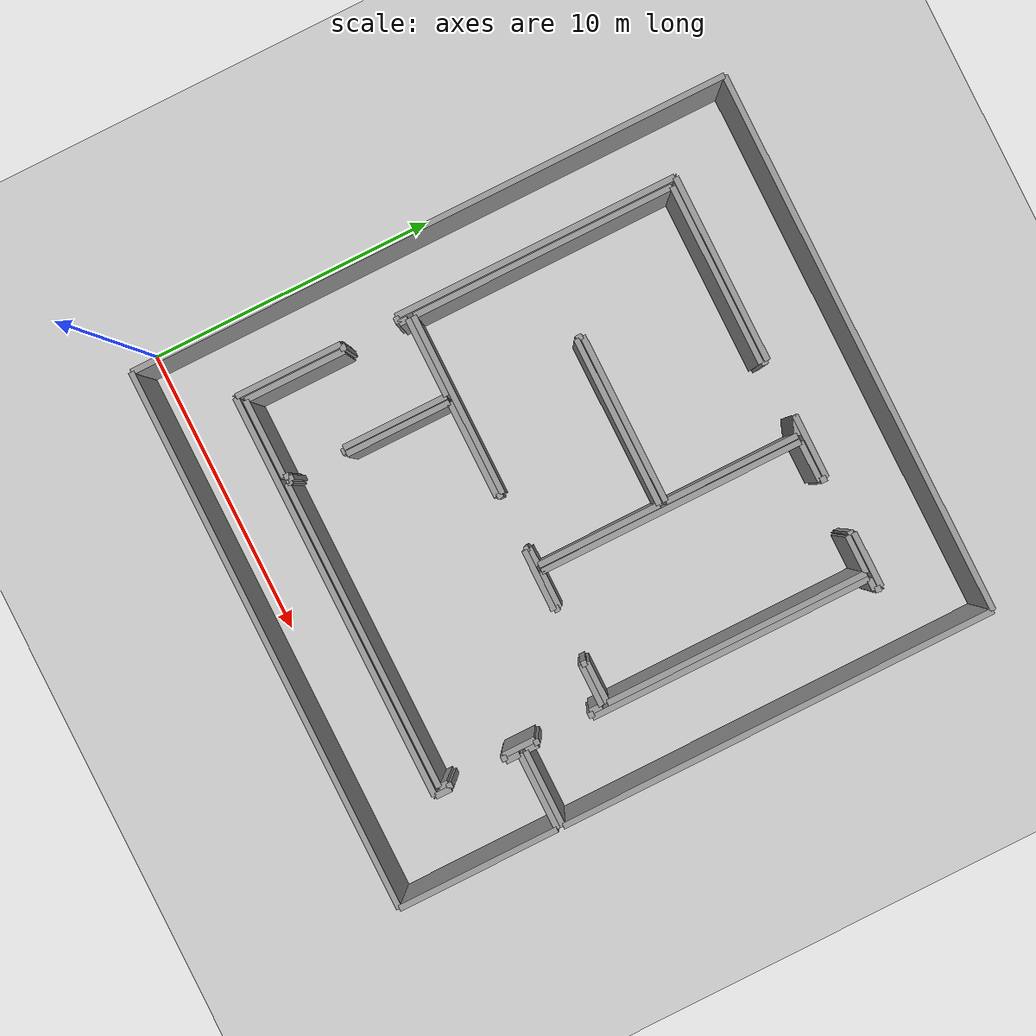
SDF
<sdf version="1.6">
 <world name="1_wall">
  <light name="sun" type="directional">
   <pose>0 0 10 0 -0 0</pose>
   <diffuse>0.8 0.8 0.8 1</diffuse>
   <specular>0.2 0.2 0.2 1</specular>
   <attenuation>
    <range>1000</range>
    <constant>0.9</constant>
    <linear>0.01</linear>
    <quadratic>0.001</quadratic>
   </attenuation>
   <direction>-0.5 0.1 -0.9</direction>
  </light>
  <model name="ground_plane">
   <static>1</static>
   <link name="link">
    <collision name="collision">
     <geometry><plane><normal>0 0 1</normal><size>1000 1000</size></plane></geometry>
     <surface><friction><ode><mu>100</mu><mu2>50</mu2></ode></friction></surface>
    </collision>
    <visual name="visual">
     <cast_shadows>0</cast_shadows>
     <geometry><plane><normal>0 0 1</normal><size>10000 10000</size></plane></geometry>
     <material>
      <script><uri>file://media/materials/scripts/gazebo.material</uri><name>Gazebo/Grey</name></script>
     </material>
    </visual>
    <velocity_decay><linear>0</linear><angular>0</angular></velocity_decay>
   </link>
  </model>
  <physics name="default_physics" default="0" type="ode">
   <max_step_size>0.01</max_step_size>
   <real_time_factor>1</real_time_factor>
   <real_time_update_rate>100</real_time_update_rate>
  </physics>
  <scene><ambient>0.4 0.4 0.4 1</ambient><background>0.7 0.7 0.7 1</background><shadows>1</shadows></scene>
  <model name="Wall_0">
   <pose>0 -1 0 0 -0 0</pose>
   <static>1</static>
   <link name="Wall_0">
    <collision name="Wall_Collision_0">
     <geometry><box><size>18.86 0.2 2.5</size></box></geometry>
     <pose>0 0 1.25 0 -0 0</pose>
    </collision>
    <visual name="Wall_Visual_0">
     <pose>0 0 1.25 0 -0 0</pose>
     <geometry><box><size>18.86 0.2 2.5</size></box></geometry>
     <material>
      <script><uri>file://media/materials/scripts/gazebo.material</uri><name>Gazebo/Grey</name></script>
     </material>
    </visual>
    <velocity_decay><linear>0</linear><angular>0</angular></velocity_decay>
    <pose>9.99 0.56 0 0 -0 -3.14159</pose>
   </link>
  </model>
  <model name="Wall_1">
   <pose>0 -1 0 0 -0 0</pose>
   <static>1</static>
   <link name="Wall_1">
    <collision name="Wall_Collision_1">
     <geometry><box><size>20.9 0.2 2.5</size></box></geometry>
     <pose>0 0 1.25 0 -0 0</pose>
    </collision>
    <visual name="Wall_Visual_1">
     <pose>0 0 1.25 0 -0 0</pose>
     <geometry><box><size>20.9 0.2 2.5</size></box></geometry>
     <material>
      <script><uri>file://media/materials/scripts/gazebo.material</uri><name>Gazebo/Grey</name></script>
     </material>
    </visual>
    <velocity_decay><linear>0</linear><angular>0</angular></velocity_decay>
    <pose>0.56 11.01 0 0 -0 1.5708</pose>
   </link>
  </model>
  <model name="Wall_2">
   <pose>0 -1 0 0 -0 0</pose>
   <static>1</static>
   <link name="Wall_2">
    <collision name="Wall_Collision_2">
     <geometry><box><size>18.86 0.2 2.5</size></box></geometry>
     <pose>0 0 1.25 0 -0 0</pose>
    </collision>
    <visual name="Wall_Visual_2">
     <pose>0 0 1.25 0 -0 0</pose>
     <geometry><box><size>18.86 0.2 2.5</size></box></geometry>
     <material>
      <script><uri>file://media/materials/scripts/gazebo.material</uri><name>Gazebo/Grey</name></script>
     </material>
    </visual>
    <velocity_decay><linear>0</linear><angular>0</angular></velocity_decay>
    <pose>9.99 21.46 0 0 -0 0</pose>
   </link>
  </model>
  <model name="Wall_3">
   <pose>0 -1 0 0 -0 0</pose>
   <static>1</static>
   <link name="Wall_3">
    <collision name="Wall_Collision_3">
     <geometry><box><size>15.14 0.2 2.5</size></box></geometry>
     <pose>0 0 1.25 0 -0 0</pose>
    </collision>
    <visual name="Wall_Visual_3">
     <pose>0 0 1.25 0 -0 0</pose>
     <geometry><box><size>15.14 0.2 2.5</size></box></geometry>
     <material>
      <script><uri>file://media/materials/scripts/gazebo.material</uri><name>Gazebo/Grey</name></script>
     </material>
    </visual>
    <velocity_decay><linear>0</linear><angular>0</angular></velocity_decay>
    <pose>19.42 13.89 0 0 0 -1.5708</pose>
   </link>
  </model>
  <model name="Wall_4">
   <pose>0 -1 0 0 -0 0</pose>
   <static>1</static>
   <link name="Wall_4">
    <collision name="Wall_Collision_4">
     <geometry><box><size>2.64 0.2 2.5</size></box></geometry>
     <pose>0 0 1.25 0 -0 0</pose>
    </collision>
    <visual name="Wall_Visual_4">
     <pose>0 0 1.25 0 -0 0</pose>
     <geometry><box><size>2.64 0.2 2.5</size></box></geometry>
     <material>
      <script><uri>file://media/materials/scripts/gazebo.material</uri><name>Gazebo/Grey</name></script>
     </material>
    </visual>
    <velocity_decay><linear>0</linear><angular>0</angular></velocity_decay>
    <pose>18.1 6.32 0 0 -0 -3.14159</pose>
   </link>
  </model>
  <model name="Wall_5">
   <pose>0 -1 0 0 -0 0</pose>
   <static>1</static>
   <link name="Wall_5">
    <collision name="Wall_Collision_5">
     <geometry><box><size>0.44 0.2 2.5</size></box></geometry>
     <pose>0 0 1.25 0 -0 0</pose>
    </collision>
    <visual name="Wall_Visual_5">
     <pose>0 0 1.25 0 -0 0</pose>
     <geometry><box><size>0.44 0.2 2.5</size></box></geometry>
     <material>
      <script><uri>file://media/materials/scripts/gazebo.material</uri><name>Gazebo/Grey</name></script>
     </material>
    </visual>
    <velocity_decay><linear>0</linear><angular>0</angular></velocity_decay>
    <pose>16.78 6.54 0 0 -0 1.5708</pose>
   </link>
  </model>
  <model name="Wall_6">
   <pose>0 -1 0 0 -0 0</pose>
   <static>1</static>
   <link name="Wall_6">
    <collision name="Wall_Collision_6">
     <geometry><box><size>0.2 0.2 2.5</size></box></geometry>
     <pose>0 0 1.25 0 -0 0</pose>
    </collision>
    <visual name="Wall_Visual_6">
     <pose>0 0 1.25 0 -0 0</pose>
     <geometry><box><size>0.2 0.2 2.5</size></box></geometry>
     <material>
      <script><uri>file://media/materials/scripts/gazebo.material</uri><name>Gazebo/Grey</name></script>
     </material>
    </visual>
    <velocity_decay><linear>0</linear><angular>0</angular></velocity_decay>
    <pose>16.68 6.76 0 0 -0 -3.14159</pose>
   </link>
  </model>
  <model name="Wall_7">
   <pose>0 -1 0 0 -0 0</pose>
   <static>1</static>
   <link name="Wall_7">
    <collision name="Wall_Collision_7">
     <geometry><box><size>1.14 0.2 2.5</size></box></geometry>
     <pose>0 0 1.25 0 -0 0</pose>
    </collision>
    <visual name="Wall_Visual_7">
     <pose>0 0 1.25 0 -0 0</pose>
     <geometry><box><size>1.14 0.2 2.5</size></box></geometry>
     <material>
      <script><uri>file://media/materials/scripts/gazebo.material</uri><name>Gazebo/Grey</name></script>
     </material>
    </visual>
    <velocity_decay><linear>0</linear><angular>0</angular></velocity_decay>
    <pose>16.58 6.19 0 0 0 -1.5708</pose>
   </link>
  </model>
  <model name="Wall_8">
   <pose>0 -1 0 0 -0 0</pose>
   <static>1</static>
   <link name="Wall_8">
    <collision name="Wall_Collision_8">
     <geometry><box><size>0.2 0.2 2.5</size></box></geometry>
     <pose>0 0 1.25 0 -0 0</pose>
    </collision>
    <visual name="Wall_Visual_8">
     <pose>0 0 1.25 0 -0 0</pose>
     <geometry><box><size>0.2 0.2 2.5</size></box></geometry>
     <material>
      <script><uri>file://media/materials/scripts/gazebo.material</uri><name>Gazebo/Grey</name></script>
     </material>
    </visual>
    <velocity_decay><linear>0</linear><angular>0</angular></velocity_decay>
    <pose>16.68 5.62 0 0 -0 0</pose>
   </link>
  </model>
  <model name="Wall_9">
   <pose>0 -1 0 0 -0 0</pose>
   <static>1</static>
   <link name="Wall_9">
    <collision name="Wall_Collision_9">
     <geometry><box><size>0.5 0.2 2.5</size></box></geometry>
     <pose>0 0 1.25 0 -0 0</pose>
    </collision>
    <visual name="Wall_Visual_9">
     <pose>0 0 1.25 0 -0 0</pose>
     <geometry><box><size>0.5 0.2 2.5</size></box></geometry>
     <material>
      <script><uri>file://media/materials/scripts/gazebo.material</uri><name>Gazebo/Grey</name></script>
     </material>
    </visual>
    <velocity_decay><linear>0</linear><angular>0</angular></velocity_decay>
    <pose>16.78 5.87 0 0 -0 1.5708</pose>
   </link>
  </model>
  <model name="Wall_10">
   <pose>0 -1 0 0 -0 0</pose>
   <static>1</static>
   <link name="Wall_10">
    <collision name="Wall_Collision_10">
     <geometry><box><size>2.64 0.2 2.5</size></box></geometry>
     <pose>0 0 1.25 0 -0 0</pose>
    </collision>
    <visual name="Wall_Visual_10">
     <pose>0 0 1.25 0 -0 0</pose>
     <geometry><box><size>2.64 0.2 2.5</size></box></geometry>
     <material>
      <script><uri>file://media/materials/scripts/gazebo.material</uri><name>Gazebo/Grey</name></script>
     </material>
    </visual>
    <velocity_decay><linear>0</linear><angular>0</angular></velocity_decay>
    <pose>18.1 6.12 0 0 -0 0</pose>
   </link>
  </model>
  <model name="Wall_11">
   <pose>0 -1 0 0 -0 0</pose>
   <static>1</static>
   <link name="Wall_11">
    <collision name="Wall_Collision_11">
     <geometry><box><size>5.56 0.2 2.5</size></box></geometry>
     <pose>0 0 1.25 0 -0 0</pose>
    </collision>
    <visual name="Wall_Visual_11">
     <pose>0 0 1.25 0 -0 0</pose>
     <geometry><box><size>5.56 0.2 2.5</size></box></geometry>
     <material>
      <script><uri>file://media/materials/scripts/gazebo.material</uri><name>Gazebo/Grey</name></script>
     </material>
    </visual>
    <velocity_decay><linear>0</linear><angular>0</angular></velocity_decay>
    <pose>19.42 3.34 0 0 0 -1.5708</pose>
   </link>
  </model>
  <model name="Wall_12">
   <pose>0 -1 0 0 -0 0</pose>
   <static>1</static>
   <link name="Wall_12">
    <collision name="Wall_Collision_12">
     <geometry><box><size>0.16 0.2 2.5</size></box></geometry>
     <pose>0 0 1.25 0 -0 0</pose>
    </collision>
    <visual name="Wall_Visual_12">
     <pose>0 0 1.25 0 -0 0</pose>
     <geometry><box><size>0.16 0.2 2.5</size></box></geometry>
     <material>
      <script><uri>file://media/materials/scripts/gazebo.material</uri><name>Gazebo/Grey</name></script>
     </material>
    </visual>
    <velocity_decay><linear>0</linear><angular>0</angular></velocity_decay>
    <pose>11.12 9.2 0 0 0 -1.5708</pose>
   </link>
  </model>
  <model name="Wall_13">
   <pose>0 -1 0 0 -0 0</pose>
   <static>1</static>
   <link name="Wall_13">
    <collision name="Wall_Collision_13">
     <geometry><box><size>2.1001 0.2 2.5</size></box></geometry>
     <pose>0 0 1.25 0 -0 0</pose>
    </collision>
    <visual name="Wall_Visual_13">
     <pose>0 0 1.25 0 -0 0</pose>
     <geometry><box><size>2.1001 0.2 2.5</size></box></geometry>
     <material>
      <script><uri>file://media/materials/scripts/gazebo.material</uri><name>Gazebo/Grey</name></script>
     </material>
    </visual>
    <velocity_decay><linear>0</linear><angular>0</angular></velocity_decay>
    <pose>12.17 9.11 0 0 0 -0.009524</pose>
   </link>
  </model>
  <model name="Wall_14">
   <pose>0 -1 0 0 -0 0</pose>
   <static>1</static>
   <link name="Wall_14">
    <collision name="Wall_Collision_14">
     <geometry><box><size>0.2 0.2 2.5</size></box></geometry>
     <pose>0 0 1.25 0 -0 0</pose>
    </collision>
    <visual name="Wall_Visual_14">
     <pose>0 0 1.25 0 -0 0</pose>
     <geometry><box><size>0.2 0.2 2.5</size></box></geometry>
     <material>
      <script><uri>file://media/materials/scripts/gazebo.material</uri><name>Gazebo/Grey</name></script>
     </material>
    </visual>
    <velocity_decay><linear>0</linear><angular>0</angular></velocity_decay>
    <pose>13.22 9.2 0 0 -0 1.5708</pose>
   </link>
  </model>
  <model name="Wall_15">
   <pose>0 -1 0 0 -0 0</pose>
   <static>1</static>
   <link name="Wall_15">
    <collision name="Wall_Collision_15">
     <geometry><box><size>1.26 0.2 2.5</size></box></geometry>
     <pose>0 0 1.25 0 -0 0</pose>
    </collision>
    <visual name="Wall_Visual_15">
     <pose>0 0 1.25 0 -0 0</pose>
     <geometry><box><size>1.26 0.2 2.5</size></box></geometry>
     <material>
      <script><uri>file://media/materials/scripts/gazebo.material</uri><name>Gazebo/Grey</name></script>
     </material>
    </visual>
    <velocity_decay><linear>0</linear><angular>0</angular></velocity_decay>
    <pose>12.59 9.3 0 0 -0 -3.14159</pose>
   </link>
  </model>
  <model name="Wall_16">
   <pose>0 -1 0 0 -0 0</pose>
   <static>1</static>
   <link name="Wall_16">
    <collision name="Wall_Collision_16">
     <geometry><box><size>9.12 0.2 2.5</size></box></geometry>
     <pose>0 0 1.25 0 -0 0</pose>
    </collision>
    <visual name="Wall_Visual_16">
     <pose>0 0 1.25 0 -0 0</pose>
     <geometry><box><size>9.12 0.2 2.5</size></box></geometry>
     <material>
      <script><uri>file://media/materials/scripts/gazebo.material</uri><name>Gazebo/Grey</name></script>
     </material>
    </visual>
    <velocity_decay><linear>0</linear><angular>0</angular></velocity_decay>
    <pose>11.96 13.86 0 0 -0 1.5708</pose>
   </link>
  </model>
  <model name="Wall_17">
   <pose>0 -1 0 0 -0 0</pose>
   <static>1</static>
   <link name="Wall_17">
    <collision name="Wall_Collision_17">
     <geometry><box><size>1.38 0.2 2.5</size></box></geometry>
     <pose>0 0 1.25 0 -0 0</pose>
    </collision>
    <visual name="Wall_Visual_17">
     <pose>0 0 1.25 0 -0 0</pose>
     <geometry><box><size>1.38 0.2 2.5</size></box></geometry>
     <material>
      <script><uri>file://media/materials/scripts/gazebo.material</uri><name>Gazebo/Grey</name></script>
     </material>
    </visual>
    <velocity_decay><linear>0</linear><angular>0</angular></velocity_decay>
    <pose>12.65 18.42 0 0 -0 0</pose>
   </link>
  </model>
  <model name="Wall_18">
   <pose>0 -1 0 0 -0 0</pose>
   <static>1</static>
   <link name="Wall_18">
    <collision name="Wall_Collision_18">
     <geometry><box><size>0.22 0.2 2.5</size></box></geometry>
     <pose>0 0 1.25 0 -0 0</pose>
    </collision>
    <visual name="Wall_Visual_18">
     <pose>0 0 1.25 0 -0 0</pose>
     <geometry><box><size>0.22 0.2 2.5</size></box></geometry>
     <material>
      <script><uri>file://media/materials/scripts/gazebo.material</uri><name>Gazebo/Grey</name></script>
     </material>
    </visual>
    <velocity_decay><linear>0</linear><angular>0</angular></velocity_decay>
    <pose>13.34 18.53 0 0 -0 1.5708</pose>
   </link>
  </model>
  <model name="Wall_19">
   <pose>0 -1 0 0 -0 0</pose>
   <static>1</static>
   <link name="Wall_19">
    <collision name="Wall_Collision_19">
     <geometry><box><size>2.22 0.2 2.5</size></box></geometry>
     <pose>0 0 1.25 0 -0 0</pose>
    </collision>
    <visual name="Wall_Visual_19">
     <pose>0 0 1.25 0 -0 0</pose>
     <geometry><box><size>2.22 0.2 2.5</size></box></geometry>
     <material>
      <script><uri>file://media/materials/scripts/gazebo.material</uri><name>Gazebo/Grey</name></script>
     </material>
    </visual>
    <velocity_decay><linear>0</linear><angular>0</angular></velocity_decay>
    <pose>12.23 18.64 0 0 -0 -3.14159</pose>
   </link>
  </model>
  <model name="Wall_20">
   <pose>0 -1 0 0 -0 0</pose>
   <static>1</static>
   <link name="Wall_20">
    <collision name="Wall_Collision_20">
     <geometry><box><size>0.657875 0.2 2.5</size></box></geometry>
     <pose>0 0 1.25 0 -0 0</pose>
    </collision>
    <visual name="Wall_Visual_20">
     <pose>0 0 1.25 0 -0 0</pose>
     <geometry><box><size>0.657875 0.2 2.5</size></box></geometry>
     <material>
      <script><uri>file://media/materials/scripts/gazebo.material</uri><name>Gazebo/Grey</name></script>
     </material>
    </visual>
    <velocity_decay><linear>0</linear><angular>0</angular></velocity_decay>
    <pose>11.43 18.53 0 0 0 -0.340979</pose>
   </link>
  </model>
  <model name="Wall_21">
   <pose>0 -1 0 0 -0 0</pose>
   <static>1</static>
   <link name="Wall_21">
    <collision name="Wall_Collision_21">
     <geometry><box><size>4.64 0.2 2.5</size></box></geometry>
     <pose>0 0 1.25 0 -0 0</pose>
    </collision>
    <visual name="Wall_Visual_21">
     <pose>0 0 1.25 0 -0 0</pose>
     <geometry><box><size>4.64 0.2 2.5</size></box></geometry>
     <material>
      <script><uri>file://media/materials/scripts/gazebo.material</uri><name>Gazebo/Grey</name></script>
     </material>
    </visual>
    <velocity_decay><linear>0</linear><angular>0</angular></velocity_decay>
    <pose>11.74 16.1 0 0 0 -1.5708</pose>
   </link>
  </model>
  <model name="Wall_22">
   <pose>0 -1 0 0 -0 0</pose>
   <static>1</static>
   <link name="Wall_22">
    <collision name="Wall_Collision_22">
     <geometry><box><size>5.84 0.2 2.5</size></box></geometry>
     <pose>0 0 1.25 0 -0 0</pose>
    </collision>
    <visual name="Wall_Visual_22">
     <pose>0 0 1.25 0 -0 0</pose>
     <geometry><box><size>5.84 0.2 2.5</size></box></geometry>
     <material>
      <script><uri>file://media/materials/scripts/gazebo.material</uri><name>Gazebo/Grey</name></script>
     </material>
    </visual>
    <velocity_decay><linear>0</linear><angular>0</angular></velocity_decay>
    <pose>8.82 13.78 0 0 -0 -3.14159</pose>
   </link>
  </model>
  <model name="Wall_23">
   <pose>0 -1 0 0 -0 0</pose>
   <static>1</static>
   <link name="Wall_23">
    <collision name="Wall_Collision_23">
     <geometry><box><size>0.22 0.2 2.5</size></box></geometry>
     <pose>0 0 1.25 0 -0 0</pose>
    </collision>
    <visual name="Wall_Visual_23">
     <pose>0 0 1.25 0 -0 0</pose>
     <geometry><box><size>0.22 0.2 2.5</size></box></geometry>
     <material>
      <script><uri>file://media/materials/scripts/gazebo.material</uri><name>Gazebo/Grey</name></script>
     </material>
    </visual>
    <velocity_decay><linear>0</linear><angular>0</angular></velocity_decay>
    <pose>5.9 13.67 0 0 0 -1.5708</pose>
   </link>
  </model>
  <model name="Wall_24">
   <pose>0 -1 0 0 -0 0</pose>
   <static>1</static>
   <link name="Wall_24">
    <collision name="Wall_Collision_24">
     <geometry><box><size>5.84 0.2 2.5</size></box></geometry>
     <pose>0 0 1.25 0 -0 0</pose>
    </collision>
    <visual name="Wall_Visual_24">
     <pose>0 0 1.25 0 -0 0</pose>
     <geometry><box><size>5.84 0.2 2.5</size></box></geometry>
     <material>
      <script><uri>file://media/materials/scripts/gazebo.material</uri><name>Gazebo/Grey</name></script>
     </material>
    </visual>
    <velocity_decay><linear>0</linear><angular>0</angular></velocity_decay>
    <pose>8.82 13.56 0 0 -0 0</pose>
   </link>
  </model>
  <model name="Wall_25">
   <pose>0 -1 0 0 -0 0</pose>
   <static>1</static>
   <link name="Wall_25">
    <collision name="Wall_Collision_25">
     <geometry><box><size>4.26 0.2 2.5</size></box></geometry>
     <pose>0 0 1.25 0 -0 0</pose>
    </collision>
    <visual name="Wall_Visual_25">
     <pose>0 0 1.25 0 -0 0</pose>
     <geometry><box><size>4.26 0.2 2.5</size></box></geometry>
     <material>
      <script><uri>file://media/materials/scripts/gazebo.material</uri><name>Gazebo/Grey</name></script>
     </material>
    </visual>
    <velocity_decay><linear>0</linear><angular>0</angular></velocity_decay>
    <pose>11.74 11.43 0 0 0 -1.5708</pose>
   </link>
  </model>
  <model name="Wall_26">
   <pose>0 -1 0 0 -0 0</pose>
   <static>1</static>
   <link name="Wall_26">
    <collision name="Wall_Collision_26">
     <geometry><box><size>0.620322 0.2 2.5</size></box></geometry>
     <pose>0 0 1.25 0 -0 0</pose>
    </collision>
    <visual name="Wall_Visual_26">
     <pose>0 0 1.25 0 -0 0</pose>
     <geometry><box><size>0.620322 0.2 2.5</size></box></geometry>
     <material>
      <script><uri>file://media/materials/scripts/gazebo.material</uri><name>Gazebo/Grey</name></script>
     </material>
    </visual>
    <velocity_decay><linear>0</linear><angular>0</angular></velocity_decay>
    <pose>11.43 9.29 0 0 0 -3.10935</pose>
   </link>
  </model>
  <model name="Wall_27">
   <pose>0 -1 0 0 -0 0</pose>
   <static>1</static>
   <link name="Wall_27">
    <collision name="Wall_Collision_27">
     <geometry><box><size>0.42 0.2 2.5</size></box></geometry>
     <pose>0 0 1.25 0 -0 0</pose>
    </collision>
    <visual name="Wall_Visual_27">
     <pose>0 0 1.25 0 -0 0</pose>
     <geometry><box><size>0.42 0.2 2.5</size></box></geometry>
     <material>
      <script><uri>file://media/materials/scripts/gazebo.material</uri><name>Gazebo/Grey</name></script>
     </material>
    </visual>
    <velocity_decay><linear>0</linear><angular>0</angular></velocity_decay>
    <pose>16.58 8.89 0 0 0 -1.5708</pose>
   </link>
  </model>
  <model name="Wall_28">
   <pose>0 -1 0 0 -0 0</pose>
   <static>1</static>
   <link name="Wall_28">
    <collision name="Wall_Collision_28">
     <geometry><box><size>0.2 0.2 2.5</size></box></geometry>
     <pose>0 0 1.25 0 -0 0</pose>
    </collision>
    <visual name="Wall_Visual_28">
     <pose>0 0 1.25 0 -0 0</pose>
     <geometry><box><size>0.2 0.2 2.5</size></box></geometry>
     <material>
      <script><uri>file://media/materials/scripts/gazebo.material</uri><name>Gazebo/Grey</name></script>
     </material>
    </visual>
    <velocity_decay><linear>0</linear><angular>0</angular></velocity_decay>
    <pose>16.68 8.68 0 0 -0 0</pose>
   </link>
  </model>
  <model name="Wall_29">
   <pose>0 -1 0 0 -0 0</pose>
   <static>1</static>
   <link name="Wall_29">
    <collision name="Wall_Collision_29">
     <geometry><box><size>9.74 0.2 2.5</size></box></geometry>
     <pose>0 0 1.25 0 -0 0</pose>
    </collision>
    <visual name="Wall_Visual_29">
     <pose>0 0 1.25 0 -0 0</pose>
     <geometry><box><size>9.74 0.2 2.5</size></box></geometry>
     <material>
      <script><uri>file://media/materials/scripts/gazebo.material</uri><name>Gazebo/Grey</name></script>
     </material>
    </visual>
    <velocity_decay><linear>0</linear><angular>0</angular></velocity_decay>
    <pose>16.78 13.55 0 0 -0 1.5708</pose>
   </link>
  </model>
  <model name="Wall_30">
   <pose>0 -1 0 0 -0 0</pose>
   <static>1</static>
   <link name="Wall_30">
    <collision name="Wall_Collision_30">
     <geometry><box><size>0.4 0.2 2.5</size></box></geometry>
     <pose>0 0 1.25 0 -0 0</pose>
    </collision>
    <visual name="Wall_Visual_30">
     <pose>0 0 1.25 0 -0 0</pose>
     <geometry><box><size>0.4 0.2 2.5</size></box></geometry>
     <material>
      <script><uri>file://media/materials/scripts/gazebo.material</uri><name>Gazebo/Grey</name></script>
     </material>
    </visual>
    <velocity_decay><linear>0</linear><angular>0</angular></velocity_decay>
    <pose>16.98 18.42 0 0 -0 0</pose>
   </link>
  </model>
  <model name="Wall_31">
   <pose>0 -1 0 0 -0 0</pose>
   <static>1</static>
   <link name="Wall_31">
    <collision name="Wall_Collision_31">
     <geometry><box><size>0.200998 0.2 2.5</size></box></geometry>
     <pose>0 0 1.25 0 -0 0</pose>
    </collision>
    <visual name="Wall_Visual_31">
     <pose>0 0 1.25 0 -0 0</pose>
     <geometry><box><size>0.200998 0.2 2.5</size></box></geometry>
     <material>
      <script><uri>file://media/materials/scripts/gazebo.material</uri><name>Gazebo/Grey</name></script>
     </material>
    </visual>
    <velocity_decay><linear>0</linear><angular>0</angular></velocity_decay>
    <pose>17.19 18.52 0 0 -0 1.47113</pose>
   </link>
  </model>
  <model name="Wall_32">
   <pose>0 -1 0 0 -0 0</pose>
   <static>1</static>
   <link name="Wall_32">
    <collision name="Wall_Collision_32">
     <geometry><box><size>0.028284 0.2 2.5</size></box></geometry>
     <pose>0 0 1.25 0 -0 0</pose>
    </collision>
    <visual name="Wall_Visual_32">
     <pose>0 0 1.25 0 -0 0</pose>
     <geometry><box><size>0.028284 0.2 2.5</size></box></geometry>
     <material>
      <script><uri>file://media/materials/scripts/gazebo.material</uri><name>Gazebo/Grey</name></script>
     </material>
    </visual>
    <velocity_decay><linear>0</linear><angular>0</angular></velocity_decay>
    <pose>17.19 18.63 0 0 -0 2.35619</pose>
   </link>
  </model>
  <model name="Wall_33">
   <pose>0 -1 0 0 -0 0</pose>
   <static>1</static>
   <link name="Wall_33">
    <collision name="Wall_Collision_33">
     <geometry><box><size>1.92 0.2 2.5</size></box></geometry>
     <pose>0 0 1.25 0 -0 0</pose>
    </collision>
    <visual name="Wall_Visual_33">
     <pose>0 0 1.25 0 -0 0</pose>
     <geometry><box><size>1.92 0.2 2.5</size></box></geometry>
     <material>
      <script><uri>file://media/materials/scripts/gazebo.material</uri><name>Gazebo/Grey</name></script>
     </material>
    </visual>
    <velocity_decay><linear>0</linear><angular>0</angular></velocity_decay>
    <pose>16.22 18.64 0 0 -0 -3.14159</pose>
   </link>
  </model>
  <model name="Wall_34">
   <pose>0 -1 0 0 -0 0</pose>
   <static>1</static>
   <link name="Wall_34">
    <collision name="Wall_Collision_34">
     <geometry><box><size>0.200998 0.2 2.5</size></box></geometry>
     <pose>0 0 1.25 0 -0 0</pose>
    </collision>
    <visual name="Wall_Visual_34">
     <pose>0 0 1.25 0 -0 0</pose>
     <geometry><box><size>0.200998 0.2 2.5</size></box></geometry>
     <material>
      <script><uri>file://media/materials/scripts/gazebo.material</uri><name>Gazebo/Grey</name></script>
     </material>
    </visual>
    <velocity_decay><linear>0</linear><angular>0</angular></velocity_decay>
    <pose>15.25 18.54 0 0 0 -1.67047</pose>
   </link>
  </model>
  <model name="Wall_35">
   <pose>0 -1 0 0 -0 0</pose>
   <static>1</static>
   <link name="Wall_35">
    <collision name="Wall_Collision_35">
     <geometry><box><size>0.028284 0.2 2.5</size></box></geometry>
     <pose>0 0 1.25 0 -0 0</pose>
    </collision>
    <visual name="Wall_Visual_35">
     <pose>0 0 1.25 0 -0 0</pose>
     <geometry><box><size>0.028284 0.2 2.5</size></box></geometry>
     <material>
      <script><uri>file://media/materials/scripts/gazebo.material</uri><name>Gazebo/Grey</name></script>
     </material>
    </visual>
    <velocity_decay><linear>0</linear><angular>0</angular></velocity_decay>
    <pose>15.25 18.43 0 0 0 -0.785398</pose>
   </link>
  </model>
  <model name="Wall_36">
   <pose>0 -1 0 0 -0 0</pose>
   <static>1</static>
   <link name="Wall_36">
    <collision name="Wall_Collision_36">
     <geometry><box><size>1.32 0.2 2.5</size></box></geometry>
     <pose>0 0 1.25 0 -0 0</pose>
    </collision>
    <visual name="Wall_Visual_36">
     <pose>0 0 1.25 0 -0 0</pose>
     <geometry><box><size>1.32 0.2 2.5</size></box></geometry>
     <material>
      <script><uri>file://media/materials/scripts/gazebo.material</uri><name>Gazebo/Grey</name></script>
     </material>
    </visual>
    <velocity_decay><linear>0</linear><angular>0</angular></velocity_decay>
    <pose>15.92 18.42 0 0 -0 0</pose>
   </link>
  </model>
  <model name="Wall_37">
   <pose>0 -1 0 0 -0 0</pose>
   <static>1</static>
   <link name="Wall_37">
    <collision name="Wall_Collision_37">
     <geometry><box><size>9.12 0.2 2.5</size></box></geometry>
     <pose>0 0 1.25 0 -0 0</pose>
    </collision>
    <visual name="Wall_Visual_37">
     <pose>0 0 1.25 0 -0 0</pose>
     <geometry><box><size>9.12 0.2 2.5</size></box></geometry>
     <material>
      <script><uri>file://media/materials/scripts/gazebo.material</uri><name>Gazebo/Grey</name></script>
     </material>
    </visual>
    <velocity_decay><linear>0</linear><angular>0</angular></velocity_decay>
    <pose>16.58 13.86 0 0 0 -1.5708</pose>
   </link>
  </model>
  <model name="Wall_38">
   <pose>0 -1 0 0 -0 0</pose>
   <static>1</static>
   <link name="Wall_38">
    <collision name="Wall_Collision_38">
     <geometry><box><size>1.44 0.2 2.5</size></box></geometry>
     <pose>0 0 1.25 0 -0 0</pose>
    </collision>
    <visual name="Wall_Visual_38">
     <pose>0 0 1.25 0 -0 0</pose>
     <geometry><box><size>1.44 0.2 2.5</size></box></geometry>
     <material>
      <script><uri>file://media/materials/scripts/gazebo.material</uri><name>Gazebo/Grey</name></script>
     </material>
    </visual>
    <velocity_decay><linear>0</linear><angular>0</angular></velocity_decay>
    <pose>15.86 9.3 0 0 -0 -3.14159</pose>
   </link>
  </model>
  <model name="Wall_39">
   <pose>0 -1 0 0 -0 0</pose>
   <static>1</static>
   <link name="Wall_39">
    <collision name="Wall_Collision_39">
     <geometry><box><size>0.2 0.2 2.5</size></box></geometry>
     <pose>0 0 1.25 0 -0 0</pose>
    </collision>
    <visual name="Wall_Visual_39">
     <pose>0 0 1.25 0 -0 0</pose>
     <geometry><box><size>0.2 0.2 2.5</size></box></geometry>
     <material>
      <script><uri>file://media/materials/scripts/gazebo.material</uri><name>Gazebo/Grey</name></script>
     </material>
    </visual>
    <velocity_decay><linear>0</linear><angular>0</angular></velocity_decay>
    <pose>15.14 9.2 0 0 0 -1.5708</pose>
   </link>
  </model>
  <model name="Wall_40">
   <pose>0 -1 0 0 -0 0</pose>
   <static>1</static>
   <link name="Wall_40">
    <collision name="Wall_Collision_40">
     <geometry><box><size>1.44 0.2 2.5</size></box></geometry>
     <pose>0 0 1.25 0 -0 0</pose>
    </collision>
    <visual name="Wall_Visual_40">
     <pose>0 0 1.25 0 -0 0</pose>
     <geometry><box><size>1.44 0.2 2.5</size></box></geometry>
     <material>
      <script><uri>file://media/materials/scripts/gazebo.material</uri><name>Gazebo/Grey</name></script>
     </material>
    </visual>
    <velocity_decay><linear>0</linear><angular>0</angular></velocity_decay>
    <pose>15.86 9.1 0 0 -0 0</pose>
   </link>
  </model>
  <model name="Wall_41">
   <pose>0 -1 0 0 -0 0</pose>
   <static>1</static>
   <link name="Wall_41">
    <collision name="Wall_Collision_41">
     <geometry><box><size>3.64 0.2 2.5</size></box></geometry>
     <pose>0 0 1.25 0 -0 0</pose>
    </collision>
    <visual name="Wall_Visual_41">
     <pose>0 0 1.25 0 -0 0</pose>
     <geometry><box><size>3.64 0.2 2.5</size></box></geometry>
     <material>
      <script><uri>file://media/materials/scripts/gazebo.material</uri><name>Gazebo/Grey</name></script>
     </material>
    </visual>
    <velocity_decay><linear>0</linear><angular>0</angular></velocity_decay>
    <pose>5.68 7.28 0 0 0 -1.5708</pose>
   </link>
  </model>
  <model name="Wall_42">
   <pose>0 -1 0 0 -0 0</pose>
   <static>1</static>
   <link name="Wall_42">
    <collision name="Wall_Collision_42">
     <geometry><box><size>0.22 0.2 2.5</size></box></geometry>
     <pose>0 0 1.25 0 -0 0</pose>
    </collision>
    <visual name="Wall_Visual_42">
     <pose>0 0 1.25 0 -0 0</pose>
     <geometry><box><size>0.22 0.2 2.5</size></box></geometry>
     <material>
      <script><uri>file://media/materials/scripts/gazebo.material</uri><name>Gazebo/Grey</name></script>
     </material>
    </visual>
    <velocity_decay><linear>0</linear><angular>0</angular></velocity_decay>
    <pose>5.79 5.46 0 0 -0 0</pose>
   </link>
  </model>
  <model name="Wall_43">
   <pose>0 -1 0 0 -0 0</pose>
   <static>1</static>
   <link name="Wall_43">
    <collision name="Wall_Collision_43">
     <geometry><box><size>3.64 0.2 2.5</size></box></geometry>
     <pose>0 0 1.25 0 -0 0</pose>
    </collision>
    <visual name="Wall_Visual_43">
     <pose>0 0 1.25 0 -0 0</pose>
     <geometry><box><size>3.64 0.2 2.5</size></box></geometry>
     <material>
      <script><uri>file://media/materials/scripts/gazebo.material</uri><name>Gazebo/Grey</name></script>
     </material>
    </visual>
    <velocity_decay><linear>0</linear><angular>0</angular></velocity_decay>
    <pose>5.9 7.28 0 0 -0 1.5708</pose>
   </link>
  </model>
  <model name="Wall_44">
   <pose>0 -1 0 0 -0 0</pose>
   <static>1</static>
   <link name="Wall_44">
    <collision name="Wall_Collision_44">
     <geometry><box><size>3.32 0.2 2.5</size></box></geometry>
     <pose>0 0 1.25 0 -0 0</pose>
    </collision>
    <visual name="Wall_Visual_44">
     <pose>0 0 1.25 0 -0 0</pose>
     <geometry><box><size>3.32 0.2 2.5</size></box></geometry>
     <material>
      <script><uri>file://media/materials/scripts/gazebo.material</uri><name>Gazebo/Grey</name></script>
     </material>
    </visual>
    <velocity_decay><linear>0</linear><angular>0</angular></velocity_decay>
    <pose>7.56 9.1 0 0 -0 0</pose>
   </link>
  </model>
  <model name="Wall_45">
   <pose>0 -1 0 0 -0 0</pose>
   <static>1</static>
   <link name="Wall_45">
    <collision name="Wall_Collision_45">
     <geometry><box><size>0.2 0.2 2.5</size></box></geometry>
     <pose>0 0 1.25 0 -0 0</pose>
    </collision>
    <visual name="Wall_Visual_45">
     <pose>0 0 1.25 0 -0 0</pose>
     <geometry><box><size>0.2 0.2 2.5</size></box></geometry>
     <material>
      <script><uri>file://media/materials/scripts/gazebo.material</uri><name>Gazebo/Grey</name></script>
     </material>
    </visual>
    <velocity_decay><linear>0</linear><angular>0</angular></velocity_decay>
    <pose>9.22 9.2 0 0 -0 1.5708</pose>
   </link>
  </model>
  <model name="Wall_46">
   <pose>0 -1 0 0 -0 0</pose>
   <static>1</static>
   <link name="Wall_46">
    <collision name="Wall_Collision_46">
     <geometry><box><size>6.26 0.2 2.5</size></box></geometry>
     <pose>0 0 1.25 0 -0 0</pose>
    </collision>
    <visual name="Wall_Visual_46">
     <pose>0 0 1.25 0 -0 0</pose>
     <geometry><box><size>6.26 0.2 2.5</size></box></geometry>
     <material>
      <script><uri>file://media/materials/scripts/gazebo.material</uri><name>Gazebo/Grey</name></script>
     </material>
    </visual>
    <velocity_decay><linear>0</linear><angular>0</angular></velocity_decay>
    <pose>6.09 9.3 0 0 -0 -3.14159</pose>
   </link>
  </model>
  <model name="Wall_47">
   <pose>0 -1 0 0 -0 0</pose>
   <static>1</static>
   <link name="Wall_47">
    <collision name="Wall_Collision_47">
     <geometry><box><size>9.12 0.2 2.5</size></box></geometry>
     <pose>0 0 1.25 0 -0 0</pose>
    </collision>
    <visual name="Wall_Visual_47">
     <pose>0 0 1.25 0 -0 0</pose>
     <geometry><box><size>9.12 0.2 2.5</size></box></geometry>
     <material>
      <script><uri>file://media/materials/scripts/gazebo.material</uri><name>Gazebo/Grey</name></script>
     </material>
    </visual>
    <velocity_decay><linear>0</linear><angular>0</angular></velocity_decay>
    <pose>2.96 13.86 0 0 -0 1.5708</pose>
   </link>
  </model>
  <model name="Wall_48">
   <pose>0 -1 0 0 -0 0</pose>
   <static>1</static>
   <link name="Wall_48">
    <collision name="Wall_Collision_48">
     <geometry><box><size>6.24 0.2 2.5</size></box></geometry>
     <pose>0 0 1.25 0 -0 0</pose>
    </collision>
    <visual name="Wall_Visual_48">
     <pose>0 0 1.25 0 -0 0</pose>
     <geometry><box><size>6.24 0.2 2.5</size></box></geometry>
     <material>
      <script><uri>file://media/materials/scripts/gazebo.material</uri><name>Gazebo/Grey</name></script>
     </material>
    </visual>
    <velocity_decay><linear>0</linear><angular>0</angular></velocity_decay>
    <pose>6.08 18.42 0 0 -0 0</pose>
   </link>
  </model>
  <model name="Wall_49">
   <pose>0 -1 0 0 -0 0</pose>
   <static>1</static>
   <link name="Wall_49">
    <collision name="Wall_Collision_49">
     <geometry><box><size>0.22 0.2 2.5</size></box></geometry>
     <pose>0 0 1.25 0 -0 0</pose>
    </collision>
    <visual name="Wall_Visual_49">
     <pose>0 0 1.25 0 -0 0</pose>
     <geometry><box><size>0.22 0.2 2.5</size></box></geometry>
     <material>
      <script><uri>file://media/materials/scripts/gazebo.material</uri><name>Gazebo/Grey</name></script>
     </material>
    </visual>
    <velocity_decay><linear>0</linear><angular>0</angular></velocity_decay>
    <pose>9.2 18.53 0 0 -0 1.5708</pose>
   </link>
  </model>
  <model name="Wall_50">
   <pose>0 -1 0 0 -0 0</pose>
   <static>1</static>
   <link name="Wall_50">
    <collision name="Wall_Collision_50">
     <geometry><box><size>6.46 0.2 2.5</size></box></geometry>
     <pose>0 0 1.25 0 -0 0</pose>
    </collision>
    <visual name="Wall_Visual_50">
     <pose>0 0 1.25 0 -0 0</pose>
     <geometry><box><size>6.46 0.2 2.5</size></box></geometry>
     <material>
      <script><uri>file://media/materials/scripts/gazebo.material</uri><name>Gazebo/Grey</name></script>
     </material>
    </visual>
    <velocity_decay><linear>0</linear><angular>0</angular></velocity_decay>
    <pose>5.97 18.64 0 0 -0 -3.14159</pose>
   </link>
  </model>
  <model name="Wall_51">
   <pose>0 -1 0 0 -0 0</pose>
   <static>1</static>
   <link name="Wall_51">
    <collision name="Wall_Collision_51">
     <geometry><box><size>0.028284 0.2 2.5</size></box></geometry>
     <pose>0 0 1.25 0 -0 0</pose>
    </collision>
    <visual name="Wall_Visual_51">
     <pose>0 0 1.25 0 -0 0</pose>
     <geometry><box><size>0.028284 0.2 2.5</size></box></geometry>
     <material>
      <script><uri>file://media/materials/scripts/gazebo.material</uri><name>Gazebo/Grey</name></script>
     </material>
    </visual>
    <velocity_decay><linear>0</linear><angular>0</angular></velocity_decay>
    <pose>2.73 18.63 0 0 0 -2.35619</pose>
   </link>
  </model>
  <model name="Wall_52">
   <pose>0 -1 0 0 -0 0</pose>
   <static>1</static>
   <link name="Wall_52">
    <collision name="Wall_Collision_52">
     <geometry><box><size>9.84 0.2 2.5</size></box></geometry>
     <pose>0 0 1.25 0 -0 0</pose>
    </collision>
    <visual name="Wall_Visual_52">
     <pose>0 0 1.25 0 -0 0</pose>
     <geometry><box><size>9.84 0.2 2.5</size></box></geometry>
     <material>
      <script><uri>file://media/materials/scripts/gazebo.material</uri><name>Gazebo/Grey</name></script>
     </material>
    </visual>
    <velocity_decay><linear>0</linear><angular>0</angular></velocity_decay>
    <pose>2.72 13.7 0 0 0 -1.5708</pose>
   </link>
  </model>
  <model name="Wall_53">
   <pose>0 -1 0 0 -0 0</pose>
   <static>1</static>
   <link name="Wall_53">
    <collision name="Wall_Collision_53">
     <geometry><box><size>0.24 0.2 2.5</size></box></geometry>
     <pose>0 0 1.25 0 -0 0</pose>
    </collision>
    <visual name="Wall_Visual_53">
     <pose>0 0 1.25 0 -0 0</pose>
     <geometry><box><size>0.24 0.2 2.5</size></box></geometry>
     <material>
      <script><uri>file://media/materials/scripts/gazebo.material</uri><name>Gazebo/Grey</name></script>
     </material>
    </visual>
    <velocity_decay><linear>0</linear><angular>0</angular></velocity_decay>
    <pose>2.84 8.78 0 0 -0 0</pose>
   </link>
  </model>
  <model name="Wall_54">
   <pose>0 -1 0 0 -0 0</pose>
   <static>1</static>
   <link name="Wall_54">
    <collision name="Wall_Collision_54">
     <geometry><box><size>0.32 0.2 2.5</size></box></geometry>
     <pose>0 0 1.25 0 -0 0</pose>
    </collision>
    <visual name="Wall_Visual_54">
     <pose>0 0 1.25 0 -0 0</pose>
     <geometry><box><size>0.32 0.2 2.5</size></box></geometry>
     <material>
      <script><uri>file://media/materials/scripts/gazebo.material</uri><name>Gazebo/Grey</name></script>
     </material>
    </visual>
    <velocity_decay><linear>0</linear><angular>0</angular></velocity_decay>
    <pose>2.96 8.94 0 0 -0 1.5708</pose>
   </link>
  </model>
  <model name="Wall_55">
   <pose>0 -1 0 0 -0 0</pose>
   <static>1</static>
   <link name="Wall_55">
    <collision name="Wall_Collision_55">
     <geometry><box><size>2.72 0.2 2.5</size></box></geometry>
     <pose>0 0 1.25 0 -0 0</pose>
    </collision>
    <visual name="Wall_Visual_55">
     <pose>0 0 1.25 0 -0 0</pose>
     <geometry><box><size>2.72 0.2 2.5</size></box></geometry>
     <material>
      <script><uri>file://media/materials/scripts/gazebo.material</uri><name>Gazebo/Grey</name></script>
     </material>
    </visual>
    <velocity_decay><linear>0</linear><angular>0</angular></velocity_decay>
    <pose>4.32 9.1 0 0 -0 0</pose>
   </link>
  </model>
  <model name="Wall_56">
   <pose>0 -1 0 0 -0 0</pose>
   <static>1</static>
   <link name="Wall_56">
    <collision name="Wall_Collision_56">
     <geometry><box><size>3.7 0.2 2.5</size></box></geometry>
     <pose>0 0 1.25 0 -0 0</pose>
    </collision>
    <visual name="Wall_Visual_56">
     <pose>0 0 1.25 0 -0 0</pose>
     <geometry><box><size>3.7 0.2 2.5</size></box></geometry>
     <material>
      <script><uri>file://media/materials/scripts/gazebo.material</uri><name>Gazebo/Grey</name></script>
     </material>
    </visual>
    <velocity_decay><linear>0</linear><angular>0</angular></velocity_decay>
    <pose>2.72 5.01 0 0 0 -1.5708</pose>
   </link>
  </model>
  <model name="Wall_57">
   <pose>0 -1 0 0 -0 0</pose>
   <static>1</static>
   <link name="Wall_57">
    <collision name="Wall_Collision_57">
     <geometry><box><size>0.028284 0.2 2.5</size></box></geometry>
     <pose>0 0 1.25 0 -0 0</pose>
    </collision>
    <visual name="Wall_Visual_57">
     <pose>0 0 1.25 0 -0 0</pose>
     <geometry><box><size>0.028284 0.2 2.5</size></box></geometry>
     <material>
      <script><uri>file://media/materials/scripts/gazebo.material</uri><name>Gazebo/Grey</name></script>
     </material>
    </visual>
    <velocity_decay><linear>0</linear><angular>0</angular></velocity_decay>
    <pose>2.73 3.15 0 0 0 -0.785398</pose>
   </link>
  </model>
  <model name="Wall_58">
   <pose>0 -1 0 0 -0 0</pose>
   <static>1</static>
   <link name="Wall_58">
    <collision name="Wall_Collision_58">
     <geometry><box><size>14.02 0.2 2.5</size></box></geometry>
     <pose>0 0 1.25 0 -0 0</pose>
    </collision>
    <visual name="Wall_Visual_58">
     <pose>0 0 1.25 0 -0 0</pose>
     <geometry><box><size>14.02 0.2 2.5</size></box></geometry>
     <material>
      <script><uri>file://media/materials/scripts/gazebo.material</uri><name>Gazebo/Grey</name></script>
     </material>
    </visual>
    <velocity_decay><linear>0</linear><angular>0</angular></velocity_decay>
    <pose>9.75 3.14 0 0 -0 0</pose>
   </link>
  </model>
  <model name="Wall_59">
   <pose>0 -1 0 0 -0 0</pose>
   <static>1</static>
   <link name="Wall_59">
    <collision name="Wall_Collision_59">
     <geometry><box><size>0.028284 0.2 2.5</size></box></geometry>
     <pose>0 0 1.25 0 -0 0</pose>
    </collision>
    <visual name="Wall_Visual_59">
     <pose>0 0 1.25 0 -0 0</pose>
     <geometry><box><size>0.028284 0.2 2.5</size></box></geometry>
     <material>
      <script><uri>file://media/materials/scripts/gazebo.material</uri><name>Gazebo/Grey</name></script>
     </material>
    </visual>
    <velocity_decay><linear>0</linear><angular>0</angular></velocity_decay>
    <pose>16.77 3.15 0 0 -0 0.785398</pose>
   </link>
  </model>
  <model name="Wall_60">
   <pose>0 -1 0 0 -0 0</pose>
   <static>1</static>
   <link name="Wall_60">
    <collision name="Wall_Collision_60">
     <geometry><box><size>0.54 0.2 2.5</size></box></geometry>
     <pose>0 0 1.25 0 -0 0</pose>
    </collision>
    <visual name="Wall_Visual_60">
     <pose>0 0 1.25 0 -0 0</pose>
     <geometry><box><size>0.54 0.2 2.5</size></box></geometry>
     <material>
      <script><uri>file://media/materials/scripts/gazebo.material</uri><name>Gazebo/Grey</name></script>
     </material>
    </visual>
    <velocity_decay><linear>0</linear><angular>0</angular></velocity_decay>
    <pose>16.78 3.43 0 0 -0 1.5708</pose>
   </link>
  </model>
  <model name="Wall_61">
   <pose>0 -1 0 0 -0 0</pose>
   <static>1</static>
   <link name="Wall_61">
    <collision name="Wall_Collision_61">
     <geometry><box><size>0.2 0.2 2.5</size></box></geometry>
     <pose>0 0 1.25 0 -0 0</pose>
    </collision>
    <visual name="Wall_Visual_61">
     <pose>0 0 1.25 0 -0 0</pose>
     <geometry><box><size>0.2 0.2 2.5</size></box></geometry>
     <material>
      <script><uri>file://media/materials/scripts/gazebo.material</uri><name>Gazebo/Grey</name></script>
     </material>
    </visual>
    <velocity_decay><linear>0</linear><angular>0</angular></velocity_decay>
    <pose>16.68 3.7 0 0 -0 -3.14159</pose>
   </link>
  </model>
  <model name="Wall_62">
   <pose>0 -1 0 0 -0 0</pose>
   <static>1</static>
   <link name="Wall_62">
    <collision name="Wall_Collision_62">
     <geometry><box><size>0.32 0.2 2.5</size></box></geometry>
     <pose>0 0 1.25 0 -0 0</pose>
    </collision>
    <visual name="Wall_Visual_62">
     <pose>0 0 1.25 0 -0 0</pose>
     <geometry><box><size>0.32 0.2 2.5</size></box></geometry>
     <material>
      <script><uri>file://media/materials/scripts/gazebo.material</uri><name>Gazebo/Grey</name></script>
     </material>
    </visual>
    <velocity_decay><linear>0</linear><angular>0</angular></velocity_decay>
    <pose>16.58 3.54 0 0 0 -1.5708</pose>
   </link>
  </model>
  <model name="Wall_63">
   <pose>0 -1 0 0 -0 0</pose>
   <static>1</static>
   <link name="Wall_63">
    <collision name="Wall_Collision_63">
     <geometry><box><size>10.68 0.2 2.5</size></box></geometry>
     <pose>0 0 1.25 0 -0 0</pose>
    </collision>
    <visual name="Wall_Visual_63">
     <pose>0 0 1.25 0 -0 0</pose>
     <geometry><box><size>10.68 0.2 2.5</size></box></geometry>
     <material>
      <script><uri>file://media/materials/scripts/gazebo.material</uri><name>Gazebo/Grey</name></script>
     </material>
    </visual>
    <velocity_decay><linear>0</linear><angular>0</angular></velocity_decay>
    <pose>11.24 3.38 0 0 -0 -3.14159</pose>
   </link>
  </model>
  <model name="Wall_64">
   <pose>0 -1 0 0 -0 0</pose>
   <static>1</static>
   <link name="Wall_64">
    <collision name="Wall_Collision_64">
     <geometry><box><size>0.181108 0.2 2.5</size></box></geometry>
     <pose>0 0 1.25 0 -0 0</pose>
    </collision>
    <visual name="Wall_Visual_64">
     <pose>0 0 1.25 0 -0 0</pose>
     <geometry><box><size>0.181108 0.2 2.5</size></box></geometry>
     <material>
      <script><uri>file://media/materials/scripts/gazebo.material</uri><name>Gazebo/Grey</name></script>
     </material>
    </visual>
    <velocity_decay><linear>0</linear><angular>0</angular></velocity_decay>
    <pose>5.89 3.47 0 0 -0 1.68145</pose>
   </link>
  </model>
  <model name="Wall_65">
   <pose>0 -1 0 0 -0 0</pose>
   <static>1</static>
   <link name="Wall_65">
    <collision name="Wall_Collision_65">
     <geometry><box><size>0.18 0.2 2.5</size></box></geometry>
     <pose>0 0 1.25 0 -0 0</pose>
    </collision>
    <visual name="Wall_Visual_65">
     <pose>0 0 1.25 0 -0 0</pose>
     <geometry><box><size>0.18 0.2 2.5</size></box></geometry>
     <material>
      <script><uri>file://media/materials/scripts/gazebo.material</uri><name>Gazebo/Grey</name></script>
     </material>
    </visual>
    <velocity_decay><linear>0</linear><angular>0</angular></velocity_decay>
    <pose>5.79 3.56 0 0 -0 -3.14159</pose>
   </link>
  </model>
  <model name="Wall_66">
   <pose>0 -1 0 0 -0 0</pose>
   <static>1</static>
   <link name="Wall_66">
    <collision name="Wall_Collision_66">
     <geometry><box><size>0.181108 0.2 2.5</size></box></geometry>
     <pose>0 0 1.25 0 -0 0</pose>
    </collision>
    <visual name="Wall_Visual_66">
     <pose>0 0 1.25 0 -0 0</pose>
     <geometry><box><size>0.181108 0.2 2.5</size></box></geometry>
     <material>
      <script><uri>file://media/materials/scripts/gazebo.material</uri><name>Gazebo/Grey</name></script>
     </material>
    </visual>
    <velocity_decay><linear>0</linear><angular>0</angular></velocity_decay>
    <pose>5.69 3.47 0 0 0 -1.68145</pose>
   </link>
  </model>
  <model name="Wall_67">
   <pose>0 -1 0 0 -0 0</pose>
   <static>1</static>
   <link name="Wall_67">
    <collision name="Wall_Collision_67">
     <geometry><box><size>2.72 0.2 2.5</size></box></geometry>
     <pose>0 0 1.25 0 -0 0</pose>
    </collision>
    <visual name="Wall_Visual_67">
     <pose>0 0 1.25 0 -0 0</pose>
     <geometry><box><size>2.72 0.2 2.5</size></box></geometry>
     <material>
      <script><uri>file://media/materials/scripts/gazebo.material</uri><name>Gazebo/Grey</name></script>
     </material>
    </visual>
    <velocity_decay><linear>0</linear><angular>0</angular></velocity_decay>
    <pose>4.32 3.38 0 0 -0 -3.14159</pose>
   </link>
  </model>
  <model name="Wall_68">
   <pose>0 -1 0 0 -0 0</pose>
   <static>1</static>
   <link name="Wall_68">
    <collision name="Wall_Collision_68">
     <geometry><box><size>3.48 0.2 2.5</size></box></geometry>
     <pose>0 0 1.25 0 -0 0</pose>
    </collision>
    <visual name="Wall_Visual_68">
     <pose>0 0 1.25 0 -0 0</pose>
     <geometry><box><size>3.48 0.2 2.5</size></box></geometry>
     <material>
      <script><uri>file://media/materials/scripts/gazebo.material</uri><name>Gazebo/Grey</name></script>
     </material>
    </visual>
    <velocity_decay><linear>0</linear><angular>0</angular></velocity_decay>
    <pose>2.96 5.12 0 0 -0 1.5708</pose>
   </link>
  </model>
  <model name="Wall_69">
   <pose>0 -1 0 0 -0 0</pose>
   <static>1</static>
   <link name="Wall_69">
    <collision name="Wall_Collision_69">
     <geometry><box><size>0.220907 0.2 2.5</size></box></geometry>
     <pose>0 0 1.25 0 -0 0</pose>
    </collision>
    <visual name="Wall_Visual_69">
     <pose>0 0 1.25 0 -0 0</pose>
     <geometry><box><size>0.220907 0.2 2.5</size></box></geometry>
     <material>
      <script><uri>file://media/materials/scripts/gazebo.material</uri><name>Gazebo/Grey</name></script>
     </material>
    </visual>
    <velocity_decay><linear>0</linear><angular>0</angular></velocity_decay>
    <pose>2.85 6.87 0 0 -0 3.05093</pose>
   </link>
  </model>
  <model name="Wall_70">
   <pose>0 -1 0 0 -0 0</pose>
   <static>1</static>
   <link name="Wall_70">
    <collision name="Wall_Collision_70">
     <geometry><box><size>0.028284 0.2 2.5</size></box></geometry>
     <pose>0 0 1.25 0 -0 0</pose>
    </collision>
    <visual name="Wall_Visual_70">
     <pose>0 0 1.25 0 -0 0</pose>
     <geometry><box><size>0.028284 0.2 2.5</size></box></geometry>
     <material>
      <script><uri>file://media/materials/scripts/gazebo.material</uri><name>Gazebo/Grey</name></script>
     </material>
    </visual>
    <velocity_decay><linear>0</linear><angular>0</angular></velocity_decay>
    <pose>2.73 6.87 0 0 0 -2.35619</pose>
   </link>
  </model>
  <gravity>0 0 -9.8</gravity>
  <magnetic_field>6e-06 2.3e-05 -4.2e-05</magnetic_field>
  <atmosphere type="adiabatic"/>
  <spherical_coordinates>
   <surface_model>EARTH_WGS84</surface_model>
   <latitude_deg>0</latitude_deg>
   <longitude_deg>0</longitude_deg>
   <elevation>0</elevation>
   <heading_deg>0</heading_deg>
  </spherical_coordinates>
 </world>
</sdf>
